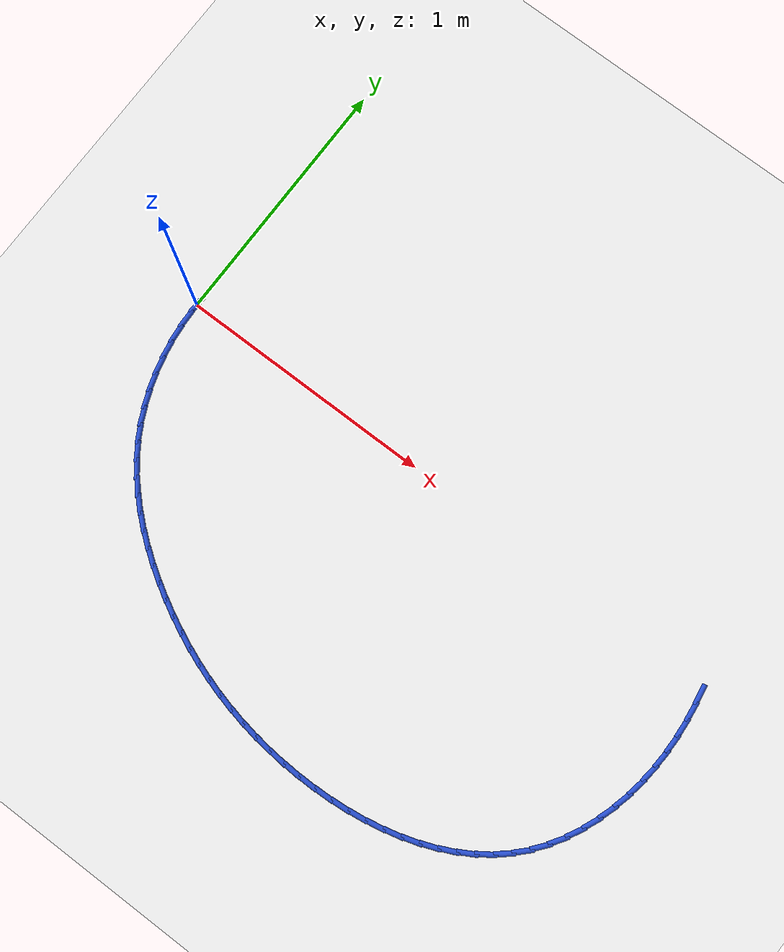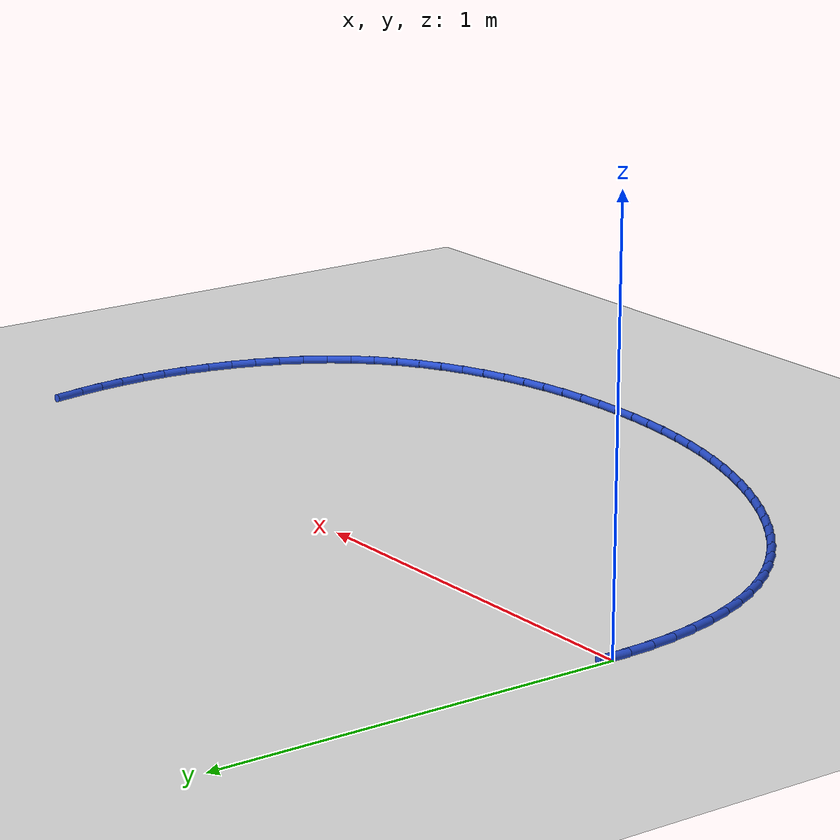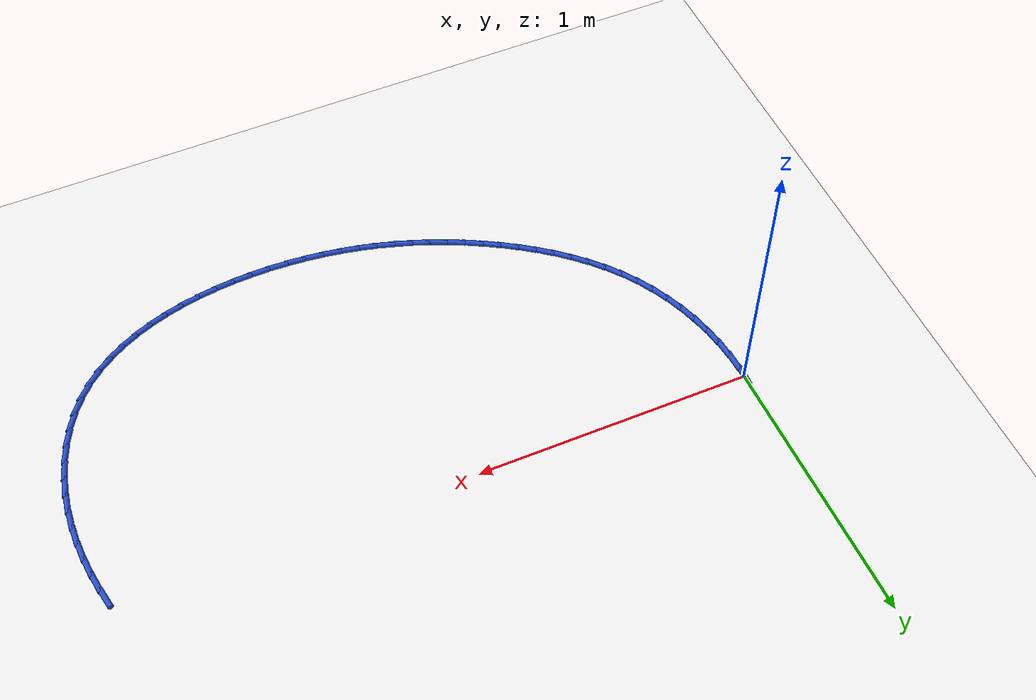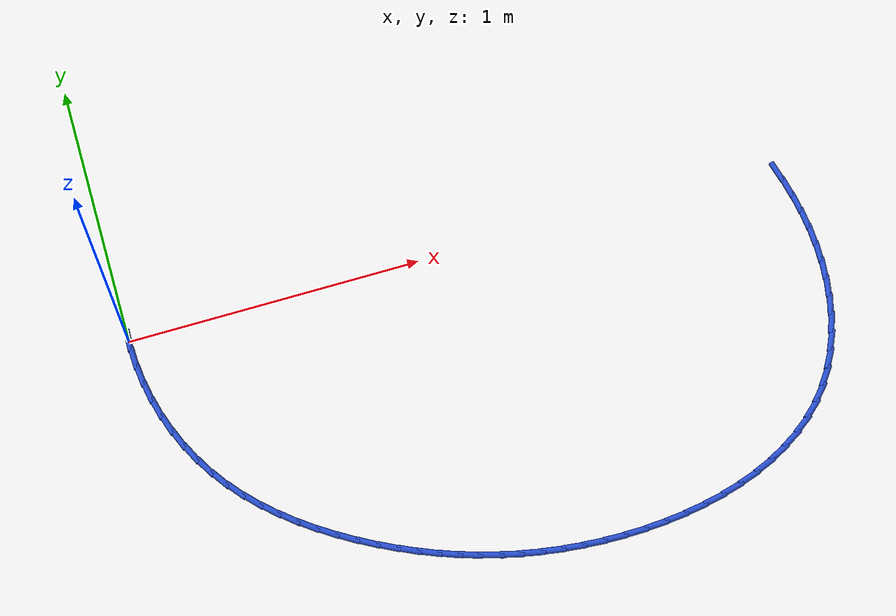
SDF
<sdf version="1.6">
 <world name="default">
  <model name="ground_plane">
   <static>1</static>
   <link name="link">
    <collision name="collision">
     <geometry><plane><normal>0 0 1</normal><size>100 100</size></plane></geometry>
     <surface><friction><ode><mu>100</mu><mu2>50</mu2></ode></friction></surface>
    </collision>
    <visual name="visual">
     <cast_shadows>0</cast_shadows>
     <geometry><plane><normal>0 0 1</normal><size>100 100</size></plane></geometry>
     <material>
      <script><uri>file://media/materials/scripts/gazebo.material</uri><name>Gazebo/WhiteGlow</name></script>
     </material>
    </visual>
   </link>
  </model>
  <model name="line">
   <link name="link_0">
    <pose>4.85722573273506e-17 -4.163336342344337e-17 0.01 0 1.57 1.540018823750158</pose>
    <collision name="collision">
     <geometry><cylinder><radius>0.01</radius><length>0.08</length></cylinder></geometry>
    </collision>
    <visual name="visual">
     <material>
      <script><name>Gazebo/Blue</name><uri>file://media/materials/scripts/gazebo.material</uri></script>
     </material>
     <geometry><cylinder><radius>0.01</radius><length>0.08</length></cylinder></geometry>
    </visual>
   </link>
   <link name="link_55">
    <pose>2.2807574114114697 -0.04441308874393113 0.01 0 1.57 -1.408746461103281</pose>
    <collision name="collision">
     <geometry><cylinder><radius>0.01</radius><length>0.08</length></cylinder></geometry>
    </collision>
    <visual name="visual">
     <material>
      <script><name>Gazebo/Blue</name><uri>file://media/materials/scripts/gazebo.material</uri></script>
     </material>
     <geometry><cylinder><radius>0.01</radius><length>0.08</length></cylinder></geometry>
    </visual>
   </link>
   <link name="link_56">
    <pose>2.2913761379547952 -0.10936601881600619 0.01 0 1.57 -1.4590712561767378</pose>
    <collision name="collision">
     <geometry><cylinder><radius>0.01</radius><length>0.08</length></cylinder></geometry>
    </collision>
    <visual name="visual">
     <material>
      <script><name>Gazebo/Blue</name><uri>file://media/materials/scripts/gazebo.material</uri></script>
     </material>
     <geometry><cylinder><radius>0.01</radius><length>0.08</length></cylinder></geometry>
    </visual>
   </link>
   <link name="link_57">
    <pose>2.29868731068559 -0.1745324742514071 0.01 0 1.57 -1.513032399818721</pose>
    <collision name="collision">
     <geometry><cylinder><radius>0.01</radius><length>0.08</length></cylinder></geometry>
    </collision>
    <visual name="visual">
     <material>
      <script><name>Gazebo/Blue</name><uri>file://media/materials/scripts/gazebo.material</uri></script>
     </material>
     <geometry><cylinder><radius>0.01</radius><length>0.08</length></cylinder></geometry>
    </visual>
   </link>
   <link name="link_58">
    <pose>2.3024623166243057 -0.23981207954438843 0.01 0 1.57 -1.5706397056538313</pose>
    <collision name="collision">
     <geometry><cylinder><radius>0.01</radius><length>0.08</length></cylinder></geometry>
    </collision>
    <visual name="visual">
     <material>
      <script><name>Gazebo/Blue</name><uri>file://media/materials/scripts/gazebo.material</uri></script>
     </material>
     <geometry><cylinder><radius>0.01</radius><length>0.08</length></cylinder></geometry>
    </visual>
   </link>
   <link name="link_59">
    <pose>2.302472542791392 -0.3051044591892079 0.01 0 1.57 1.5097851067988666</pose>
    <collision name="collision">
     <geometry><cylinder><radius>0.01</radius><length>0.08</length></cylinder></geometry>
    </collision>
    <visual name="visual">
     <material>
      <script><name>Gazebo/Blue</name><uri>file://media/materials/scripts/gazebo.material</uri></script>
     </material>
     <geometry><cylinder><radius>0.01</radius><length>0.08</length></cylinder></geometry>
    </visual>
   </link>
   <link name="link_60">
    <pose>2.2984893762072995 -0.3703092376801199 0.01 0 1.57 1.445259182714459</pose>
    <collision name="collision">
     <geometry><cylinder><radius>0.01</radius><length>0.08</length></cylinder></geometry>
    </collision>
    <visual name="visual">
     <material>
      <script><name>Gazebo/Blue</name><uri>file://media/materials/scripts/gazebo.material</uri></script>
     </material>
     <geometry><cylinder><radius>0.01</radius><length>0.08</length></cylinder></geometry>
    </visual>
   </link>
   <link name="link_61">
    <pose>2.2902842038924796 -0.43532603951138255 0.01 0 1.57 1.377776907315647</pose>
    <collision name="collision">
     <geometry><cylinder><radius>0.01</radius><length>0.08</length></cylinder></geometry>
    </collision>
    <visual name="visual">
     <material>
      <script><name>Gazebo/Blue</name><uri>file://media/materials/scripts/gazebo.material</uri></script>
     </material>
     <geometry><cylinder><radius>0.01</radius><length>0.08</length></cylinder></geometry>
    </visual>
   </link>
   <link name="link_62">
    <pose>2.277639471898459 -0.5000206065255947 0.01 0 1.57 1.3079889943962828</pose>
    <collision name="collision">
     <geometry><cylinder><radius>0.01</radius><length>0.08</length></cylinder></geometry>
    </collision>
    <visual name="visual">
     <material>
      <script><name>Gazebo/Blue</name><uri>file://media/materials/scripts/gazebo.material</uri></script>
     </material>
     <geometry><cylinder><radius>0.01</radius><length>0.08</length></cylinder></geometry>
    </visual>
   </link>
   <link name="link_63">
    <pose>2.2604507984794404 -0.5639119436502552 0.01 0 1.57 1.2351311105532303</pose>
    <collision name="collision">
     <geometry><cylinder><radius>0.01</radius><length>0.08</length></cylinder></geometry>
    </collision>
    <visual name="visual">
     <material>
      <script><name>Gazebo/Blue</name><uri>file://media/materials/scripts/gazebo.material</uri></script>
     </material>
     <geometry><cylinder><radius>0.01</radius><length>0.08</length></cylinder></geometry>
    </visual>
   </link>
   <link name="link_64">
    <pose>2.2386801164982812 -0.62631588116141 0.01 0 1.57 1.1578371946355295</pose>
    <collision name="collision">
     <geometry><cylinder><radius>0.01</radius><length>0.08</length></cylinder></geometry>
    </collision>
    <visual name="visual">
     <material>
      <script><name>Gazebo/Blue</name><uri>file://media/materials/scripts/gazebo.material</uri></script>
     </material>
     <geometry><cylinder><radius>0.01</radius><length>0.08</length></cylinder></geometry>
    </visual>
   </link>
   <link name="link_65">
    <pose>2.212290198609874 -0.6865456763808601 0.01 0 1.57 1.0747570063562089</pose>
    <collision name="collision">
     <geometry><cylinder><radius>0.01</radius><length>0.08</length></cylinder></geometry>
    </collision>
    <visual name="visual">
     <material>
      <script><name>Gazebo/Blue</name><uri>file://media/materials/scripts/gazebo.material</uri></script>
     </material>
     <geometry><cylinder><radius>0.01</radius><length>0.08</length></cylinder></geometry>
    </visual>
   </link>
   <link name="link_66">
    <pose>2.181243817469111 -0.7439145866304058 0.01 0 1.57 0.9846068179877406</pose>
    <collision name="collision">
     <geometry><cylinder><radius>0.01</radius><length>0.08</length></cylinder></geometry>
    </collision>
    <visual name="visual">
     <material>
      <script><name>Gazebo/Blue</name><uri>file://media/materials/scripts/gazebo.material</uri></script>
     </material>
     <geometry><cylinder><radius>0.01</radius><length>0.08</length></cylinder></geometry>
    </visual>
   </link>
   <link name="link_67">
    <pose>2.1455037457308848 -0.7977358692318453 0.01 0 1.57 0.8862795984095345</pose>
    <collision name="collision">
     <geometry><cylinder><radius>0.01</radius><length>0.08</length></cylinder></geometry>
    </collision>
    <visual name="visual">
     <material>
      <script><name>Gazebo/Blue</name><uri>file://media/materials/scripts/gazebo.material</uri></script>
     </material>
     <geometry><cylinder><radius>0.01</radius><length>0.08</length></cylinder></geometry>
    </visual>
   </link>
   <link name="link_68">
    <pose>2.1050328269606453 -0.8473229103522499 0.01 0 1.57 0.7822256300309008</pose>
    <collision name="collision">
     <geometry><cylinder><radius>0.01</radius><length>0.08</length></cylinder></geometry>
    </collision>
    <visual name="visual">
     <material>
      <script><name>Gazebo/Blue</name><uri>file://media/materials/scripts/gazebo.material</uri></script>
     </material>
     <geometry><cylinder><radius>0.01</radius><length>0.08</length></cylinder></geometry>
    </visual>
   </link>
   <link name="link_69">
    <pose>2.0598958724508205 -0.8921743726493281 0.01 0 1.57 0.682386545860178</pose>
    <collision name="collision">
     <geometry><cylinder><radius>0.01</radius><length>0.08</length></cylinder></geometry>
    </collision>
    <visual name="visual">
     <material>
      <script><name>Gazebo/Blue</name><uri>file://media/materials/scripts/gazebo.material</uri></script>
     </material>
     <geometry><cylinder><radius>0.01</radius><length>0.08</length></cylinder></geometry>
    </visual>
   </link>
   <link name="link_70">
    <pose>2.010463251615469 -0.9323441212761415 0.01 0 1.57 0.5894495411330677</pose>
    <collision name="collision">
     <geometry><cylinder><radius>0.01</radius><length>0.08</length></cylinder></geometry>
    </collision>
    <visual name="visual">
     <material>
      <script><name>Gazebo/Blue</name><uri>file://media/materials/scripts/gazebo.material</uri></script>
     </material>
     <geometry><cylinder><radius>0.01</radius><length>0.08</length></cylinder></geometry>
    </visual>
   </link>
   <link name="link_71">
    <pose>1.957162327069506 -0.9679895786637005 0.01 0 1.57 0.5037974657079692</pose>
    <collision name="collision">
     <geometry><cylinder><radius>0.01</radius><length>0.08</length></cylinder></geometry>
    </collision>
    <visual name="visual">
     <material>
      <script><name>Gazebo/Blue</name><uri>file://media/materials/scripts/gazebo.material</uri></script>
     </material>
     <geometry><cylinder><radius>0.01</radius><length>0.08</length></cylinder></geometry>
    </visual>
   </link>
   <link name="link_72">
    <pose>1.9004204614278457 -0.9992681672430194 0.01 0 1.57 0.42534489847109624</pose>
    <collision name="collision">
     <geometry><cylinder><radius>0.01</radius><length>0.08</length></cylinder></geometry>
    </collision>
    <visual name="visual">
     <material>
      <script><name>Gazebo/Blue</name><uri>file://media/materials/scripts/gazebo.material</uri></script>
     </material>
     <geometry><cylinder><radius>0.01</radius><length>0.08</length></cylinder></geometry>
    </visual>
   </link>
   <link name="link_73">
    <pose>1.840665017305401 -1.0263373094451083 0.01 0 1.57 0.35368421876210815</pose>
    <collision name="collision">
     <geometry><cylinder><radius>0.01</radius><length>0.08</length></cylinder></geometry>
    </collision>
    <visual name="visual">
     <material>
      <script><name>Gazebo/Blue</name><uri>file://media/materials/scripts/gazebo.material</uri></script>
     </material>
     <geometry><cylinder><radius>0.01</radius><length>0.08</length></cylinder></geometry>
    </visual>
   </link>
   <link name="link_74">
    <pose>1.7783233573170873 -1.0493544277009812 0.01 0 1.57 0.28821583081677526</pose>
    <collision name="collision">
     <geometry><cylinder><radius>0.01</radius><length>0.08</length></cylinder></geometry>
    </collision>
    <visual name="visual">
     <material>
      <script><name>Gazebo/Blue</name><uri>file://media/materials/scripts/gazebo.material</uri></script>
     </material>
     <geometry><cylinder><radius>0.01</radius><length>0.08</length></cylinder></geometry>
    </visual>
   </link>
   <link name="link_75">
    <pose>1.7138228440778196 -1.068476944441649 0.01 0 1.57 0.22824661859675852</pose>
    <collision name="collision">
     <geometry><cylinder><radius>0.01</radius><length>0.08</length></cylinder></geometry>
    </collision>
    <visual name="visual">
     <material>
      <script><name>Gazebo/Blue</name><uri>file://media/materials/scripts/gazebo.material</uri></script>
     </material>
     <geometry><cylinder><radius>0.01</radius><length>0.08</length></cylinder></geometry>
    </visual>
   </link>
   <link name="link_76">
    <pose>1.6475908402025101 -1.0838622820981254 0.01 0 1.57 0.1730554124687907</pose>
    <collision name="collision">
     <geometry><cylinder><radius>0.01</radius><length>0.08</length></cylinder></geometry>
    </collision>
    <visual name="visual">
     <material>
      <script><name>Gazebo/Blue</name><uri>file://media/materials/scripts/gazebo.material</uri></script>
     </material>
     <geometry><cylinder><radius>0.01</radius><length>0.08</length></cylinder></geometry>
    </visual>
   </link>
   <link name="link_77">
    <pose>1.580054708306074 -1.095667863101421 0.01 0 1.57 0.12193110878185506</pose>
    <collision name="collision">
     <geometry><cylinder><radius>0.01</radius><length>0.08</length></cylinder></geometry>
    </collision>
    <visual name="visual">
     <material>
      <script><name>Gazebo/Blue</name><uri>file://media/materials/scripts/gazebo.material</uri></script>
     </material>
     <geometry><cylinder><radius>0.01</radius><length>0.08</length></cylinder></geometry>
    </visual>
   </link>
   <link name="link_78">
    <pose>1.5116418110034253 -1.104051109882549 0.01 0 1.57 0.07419067703078251</pose>
    <collision name="collision">
     <geometry><cylinder><radius>0.01</radius><length>0.08</length></cylinder></geometry>
    </collision>
    <visual name="visual">
     <material>
      <script><name>Gazebo/Blue</name><uri>file://media/materials/scripts/gazebo.material</uri></script>
     </material>
     <geometry><cylinder><radius>0.01</radius><length>0.08</length></cylinder></geometry>
    </visual>
   </link>
   <link name="link_79">
    <pose>1.4427795109094794 -1.1091694448725213 0.01 0 1.57 0.02918333444966029</pose>
    <collision name="collision">
     <geometry><cylinder><radius>0.01</radius><length>0.08</length></cylinder></geometry>
    </collision>
    <visual name="visual">
     <material>
      <script><name>Gazebo/Blue</name><uri>file://media/materials/scripts/gazebo.material</uri></script>
     </material>
     <geometry><cylinder><radius>0.01</radius><length>0.08</length></cylinder></geometry>
    </visual>
   </link>
   <link name="link_80">
    <pose>1.3738951706391487 -1.1111802905023507 0.01 0 1.57 -0.013714601087548949</pose>
    <collision name="collision">
     <geometry><cylinder><radius>0.01</radius><length>0.08</length></cylinder></geometry>
    </collision>
    <visual name="visual">
     <material>
      <script><name>Gazebo/Blue</name><uri>file://media/materials/scripts/gazebo.material</uri></script>
     </material>
     <geometry><cylinder><radius>0.01</radius><length>0.08</length></cylinder></geometry>
    </visual>
   </link>
   <link name="link_81">
    <pose>1.305416152807349 -1.1102410692030487 0.01 0 1.57 -0.05512406982117453</pose>
    <collision name="collision">
     <geometry><cylinder><radius>0.01</radius><length>0.08</length></cylinder></geometry>
    </collision>
    <visual name="visual">
     <material>
      <script><name>Gazebo/Blue</name><uri>file://media/materials/scripts/gazebo.material</uri></script>
     </material>
     <geometry><cylinder><radius>0.01</radius><length>0.08</length></cylinder></geometry>
    </visual>
   </link>
   <link name="link_82">
    <pose>1.2377659228032345 -1.1065081313879415 0.01 0 1.57 -0.09612737045384423</pose>
    <collision name="collision">
     <geometry><cylinder><radius>0.01</radius><length>0.08</length></cylinder></geometry>
    </collision>
    <visual name="visual">
     <material>
      <script><name>Gazebo/Blue</name><uri>file://media/materials/scripts/gazebo.material</uri></script>
     </material>
     <geometry><cylinder><radius>0.01</radius><length>0.08</length></cylinder></geometry>
    </visual>
   </link>
   <link name="link_83">
    <pose>1.171188309875283 -1.1000884145977516 0.01 0 1.57 -0.13755222794818345</pose>
    <collision name="collision">
     <geometry><cylinder><radius>0.01</radius><length>0.08</length></cylinder></geometry>
    </collision>
    <visual name="visual">
     <material>
      <script><name>Gazebo/Blue</name><uri>file://media/materials/scripts/gazebo.material</uri></script>
     </material>
     <geometry><cylinder><radius>0.01</radius><length>0.08</length></cylinder></geometry>
    </visual>
   </link>
   <link name="link_84">
    <pose>1.1056760699412869 -1.091019793129822 0.01 0 1.57 -0.17928989384555716</pose>
    <collision name="collision">
     <geometry><cylinder><radius>0.01</radius><length>0.08</length></cylinder></geometry>
    </collision>
    <visual name="visual">
     <material>
      <script><name>Gazebo/Blue</name><uri>file://media/materials/scripts/gazebo.material</uri></script>
     </material>
     <geometry><cylinder><radius>0.01</radius><length>0.08</length></cylinder></geometry>
    </visual>
   </link>
   <link name="link_85">
    <pose>1.0412032702905039 -1.079335000563057 0.01 0 1.57 -0.22116278965756453</pose>
    <collision name="collision">
     <geometry><cylinder><radius>0.01</radius><length>0.08</length></cylinder></geometry>
    </collision>
    <visual name="visual">
     <material>
      <script><name>Gazebo/Blue</name><uri>file://media/materials/scripts/gazebo.material</uri></script>
     </material>
     <geometry><cylinder><radius>0.01</radius><length>0.08</length></cylinder></geometry>
    </visual>
   </link>
   <link name="link_86">
    <pose>0.9777439782121956 -1.0650667704763612 0.01 0 1.57 -0.26298914281126234</pose>
    <collision name="collision">
     <geometry><cylinder><radius>0.01</radius><length>0.08</length></cylinder></geometry>
    </collision>
    <visual name="visual">
     <material>
      <script><name>Gazebo/Blue</name><uri>file://media/materials/scripts/gazebo.material</uri></script>
     </material>
     <geometry><cylinder><radius>0.01</radius><length>0.08</length></cylinder></geometry>
    </visual>
   </link>
   <link name="link_87">
    <pose>0.9152722609956201 -1.0482478364486376 0.01 0 1.57 -0.304587325157404</pose>
    <collision name="collision">
     <geometry><cylinder><radius>0.01</radius><length>0.08</length></cylinder></geometry>
    </collision>
    <visual name="visual">
     <material>
      <script><name>Gazebo/Blue</name><uri>file://media/materials/scripts/gazebo.material</uri></script>
     </material>
     <geometry><cylinder><radius>0.01</radius><length>0.08</length></cylinder></geometry>
    </visual>
   </link>
   <link name="link_88">
    <pose>0.8537621859300386 -1.0289109320587912 0.01 0 1.57 -0.3457801819571649</pose>
    <collision name="collision">
     <geometry><cylinder><radius>0.01</radius><length>0.08</length></cylinder></geometry>
    </collision>
    <visual name="visual">
     <material>
      <script><name>Gazebo/Blue</name><uri>file://media/materials/scripts/gazebo.material</uri></script>
     </material>
     <geometry><cylinder><radius>0.01</radius><length>0.08</length></cylinder></geometry>
    </visual>
   </link>
   <link name="link_89">
    <pose>0.7931878203047097 -1.0070887908857256 0.01 0 1.57 -0.3863990956414398</pose>
    <collision name="collision">
     <geometry><cylinder><radius>0.01</radius><length>0.08</length></cylinder></geometry>
    </collision>
    <visual name="visual">
     <material>
      <script><name>Gazebo/Blue</name><uri>file://media/materials/scripts/gazebo.material</uri></script>
     </material>
     <geometry><cylinder><radius>0.01</radius><length>0.08</length></cylinder></geometry>
    </visual>
   </link>
   <link name="link_90">
    <pose>0.7335232314088949 -0.9828141465083452 0.01 0 1.57 -0.42628755741082486</pose>
    <collision name="collision">
     <geometry><cylinder><radius>0.01</radius><length>0.08</length></cylinder></geometry>
    </collision>
    <visual name="visual">
     <material>
      <script><name>Gazebo/Blue</name><uri>file://media/materials/scripts/gazebo.material</uri></script>
     </material>
     <geometry><cylinder><radius>0.01</radius><length>0.08</length></cylinder></geometry>
    </visual>
   </link>
   <link name="link_91">
    <pose>0.6747424865318519 -0.9561197325055534 0.01 0 1.57 -0.4653040713294273</pose>
    <collision name="collision">
     <geometry><cylinder><radius>0.01</radius><length>0.08</length></cylinder></geometry>
    </collision>
    <visual name="visual">
     <material>
      <script><name>Gazebo/Blue</name><uri>file://media/materials/scripts/gazebo.material</uri></script>
     </material>
     <geometry><cylinder><radius>0.01</radius><length>0.08</length></cylinder></geometry>
    </visual>
   </link>
   <link name="link_92">
    <pose>0.6168196529628425 -0.9270382824562553 0.01 0 1.57 -0.5033789671715847</pose>
    <collision name="collision">
     <geometry><cylinder><radius>0.01</radius><length>0.08</length></cylinder></geometry>
    </collision>
    <visual name="visual">
     <material>
      <script><name>Gazebo/Blue</name><uri>file://media/materials/scripts/gazebo.material</uri></script>
     </material>
     <geometry><cylinder><radius>0.01</radius><length>0.08</length></cylinder></geometry>
    </visual>
   </link>
   <link name="link_93">
    <pose>0.5597342499028881 -0.8956014635487461 0.01 0 1.57 -0.54220315272803</pose>
    <collision name="collision">
     <geometry><cylinder><radius>0.01</radius><length>0.08</length></cylinder></geometry>
    </collision>
    <visual name="visual">
     <material>
      <script><name>Gazebo/Blue</name><uri>file://media/materials/scripts/gazebo.material</uri></script>
     </material>
     <geometry><cylinder><radius>0.01</radius><length>0.08</length></cylinder></geometry>
    </visual>
   </link>
   <link name="link_94">
    <pose>0.5036377103545291 -0.8618073167368453 0.01 0 1.57 -0.5840805769103816</pose>
    <collision name="collision">
     <geometry><cylinder><radius>0.01</radius><length>0.08</length></cylinder></geometry>
    </collision>
    <visual name="visual">
     <material>
      <script><name>Gazebo/Blue</name><uri>file://media/materials/scripts/gazebo.material</uri></script>
     </material>
     <geometry><cylinder><radius>0.01</radius><length>0.08</length></cylinder></geometry>
    </visual>
   </link>
   <link name="link_95">
    <pose>0.44888405127809244 -0.825614257676075 0.01 0 1.57 -0.6295056447917265</pose>
    <collision name="collision">
     <geometry><cylinder><radius>0.01</radius><length>0.08</length></cylinder></geometry>
    </collision>
    <visual name="visual">
     <material>
      <script><name>Gazebo/Blue</name><uri>file://media/materials/scripts/gazebo.material</uri></script>
     </material>
     <geometry><cylinder><radius>0.01</radius><length>0.08</length></cylinder></geometry>
    </visual>
   </link>
   <link name="link_96">
    <pose>0.3958389274430401 -0.7869784256736095 0.01 0 1.57 -0.678863049385904</pose>
    <collision name="collision">
     <geometry><cylinder><radius>0.01</radius><length>0.08</length></cylinder></geometry>
    </collision>
    <visual name="visual">
     <material>
      <script><name>Gazebo/Blue</name><uri>file://media/materials/scripts/gazebo.material</uri></script>
     </material>
     <geometry><cylinder><radius>0.01</radius><length>0.08</length></cylinder></geometry>
    </visual>
   </link>
   <link name="link_97">
    <pose>0.344867993618831 -0.7458559600366197 0.01 0 1.57 -0.7325301948202977</pose>
    <collision name="collision">
     <geometry><cylinder><radius>0.01</radius><length>0.08</length></cylinder></geometry>
    </collision>
    <visual name="visual">
     <material>
      <script><name>Gazebo/Blue</name><uri>file://media/materials/scripts/gazebo.material</uri></script>
     </material>
     <geometry><cylinder><radius>0.01</radius><length>0.08</length></cylinder></geometry>
    </visual>
   </link>
   <link name="link_98">
    <pose>0.2963369045749245 -0.7022030000722776 0.01 0 1.57 -0.7908544403281612</pose>
    <collision name="collision">
     <geometry><cylinder><radius>0.01</radius><length>0.08</length></cylinder></geometry>
    </collision>
    <visual name="visual">
     <material>
      <script><name>Gazebo/Blue</name><uri>file://media/materials/scripts/gazebo.material</uri></script>
     </material>
     <geometry><cylinder><radius>0.01</radius><length>0.08</length></cylinder></geometry>
    </visual>
   </link>
   <link name="link_99">
    <pose>0.2506113150807817 -0.6559756850877565 0.01 0 1.57 -0.8541201663229863</pose>
    <collision name="collision">
     <geometry><cylinder><radius>0.01</radius><length>0.08</length></cylinder></geometry>
    </collision>
    <visual name="visual">
     <material>
      <script><name>Gazebo/Blue</name><uri>file://media/materials/scripts/gazebo.material</uri></script>
     </material>
     <geometry><cylinder><radius>0.01</radius><length>0.08</length></cylinder></geometry>
    </visual>
   </link>
   <link name="link_100">
    <pose>0.20805687990586166 -0.6071301543902278 0.01 0 1.57 -0.9225049018058135</pose>
    <collision name="collision">
     <geometry><cylinder><radius>0.01</radius><length>0.08</length></cylinder></geometry>
    </collision>
    <visual name="visual">
     <material>
      <script><name>Gazebo/Blue</name><uri>file://media/materials/scripts/gazebo.material</uri></script>
     </material>
     <geometry><cylinder><radius>0.01</radius><length>0.08</length></cylinder></geometry>
    </visual>
   </link>
   <link name="link_101">
    <pose>0.1690392538196252 -0.5556225472868646 0.01 0 1.57 -0.9955893371240839</pose>
    <collision name="collision">
     <geometry><cylinder><radius>0.01</radius><length>0.08</length></cylinder></geometry>
    </collision>
    <visual name="visual">
     <material>
      <script><name>Gazebo/Blue</name><uri>file://media/materials/scripts/gazebo.material</uri></script>
     </material>
     <geometry><cylinder><radius>0.01</radius><length>0.08</length></cylinder></geometry>
    </visual>
   </link>
   <link name="link_102">
    <pose>0.13390316984151465 -0.5014285847166458 0.01 0 1.57 -1.0690494348406825</pose>
    <collision name="collision">
     <geometry><cylinder><radius>0.01</radius><length>0.08</length></cylinder></geometry>
    </collision>
    <visual name="visual">
     <material>
      <script><name>Gazebo/Blue</name><uri>file://media/materials/scripts/gazebo.material</uri></script>
     </material>
     <geometry><cylinder><radius>0.01</radius><length>0.08</length></cylinder></geometry>
    </visual>
   </link>
   <link name="link_103">
    <pose>0.10279083407962375 -0.44471354190564905 0.01 0 1.57 -1.1405491202194586</pose>
    <collision name="collision">
     <geometry><cylinder><radius>0.01</radius><length>0.08</length></cylinder></geometry>
    </collision>
    <visual name="visual">
     <material>
      <script><name>Gazebo/Blue</name><uri>file://media/materials/scripts/gazebo.material</uri></script>
     </material>
     <geometry><cylinder><radius>0.01</radius><length>0.08</length></cylinder></geometry>
    </visual>
   </link>
   <link name="link_104">
    <pose>0.07573082928525171 -0.38574903942561595 0.01 0 1.57 -1.2101939564370823</pose>
    <collision name="collision">
     <geometry><cylinder><radius>0.01</radius><length>0.08</length></cylinder></geometry>
    </collision>
    <visual name="visual">
     <material>
      <script><name>Gazebo/Blue</name><uri>file://media/materials/scripts/gazebo.material</uri></script>
     </material>
     <geometry><cylinder><radius>0.01</radius><length>0.08</length></cylinder></geometry>
    </visual>
   </link>
   <link name="link_105">
    <pose>0.052750481336311286 -0.3248078742141253 0.01 0 1.57 -1.278170459745078</pose>
    <collision name="collision">
     <geometry><cylinder><radius>0.01</radius><length>0.08</length></cylinder></geometry>
    </collision>
    <visual name="visual">
     <material>
      <script><name>Gazebo/Blue</name><uri>file://media/materials/scripts/gazebo.material</uri></script>
     </material>
     <geometry><cylinder><radius>0.01</radius><length>0.08</length></cylinder></geometry>
    </visual>
   </link>
   <link name="link_106">
    <pose>0.03387711611071397 -0.2621628432087531 0.01 0 1.57 -1.344704910101411</pose>
    <collision name="collision">
     <geometry><cylinder><radius>0.01</radius><length>0.08</length></cylinder></geometry>
    </collision>
    <visual name="visual">
     <material>
      <script><name>Gazebo/Blue</name><uri>file://media/materials/scripts/gazebo.material</uri></script>
     </material>
     <geometry><cylinder><radius>0.01</radius><length>0.08</length></cylinder></geometry>
    </visual>
   </link>
   <link name="link_107">
    <pose>0.019138059486372296 -0.1980867433470777 0.01 0 1.57 -1.4100503843206813</pose>
    <collision name="collision">
     <geometry><cylinder><radius>0.01</radius><length>0.08</length></cylinder></geometry>
    </collision>
    <visual name="visual">
     <material>
      <script><name>Gazebo/Blue</name><uri>file://media/materials/scripts/gazebo.material</uri></script>
     </material>
     <geometry><cylinder><radius>0.01</radius><length>0.08</length></cylinder></geometry>
    </visual>
   </link>
   <link name="link_108">
    <pose>0.008560637341197925 -0.13285237156667506 0.01 0 1.57 -1.4744758832477212</pose>
    <collision name="collision">
     <geometry><cylinder><radius>0.01</radius><length>0.08</length></cylinder></geometry>
    </collision>
    <visual name="visual">
     <material>
      <script><name>Gazebo/Blue</name><uri>file://media/materials/scripts/gazebo.material</uri></script>
     </material>
     <geometry><cylinder><radius>0.01</radius><length>0.08</length></cylinder></geometry>
    </visual>
   </link>
   <link name="link_109">
    <pose>0.002172175553103204 -0.06673252480512383 0.01 0 1.57 -1.538257338011605</pose>
    <collision name="collision">
     <geometry><cylinder><radius>0.01</radius><length>0.08</length></cylinder></geometry>
    </collision>
    <visual name="visual">
     <material>
      <script><name>Gazebo/Blue</name><uri>file://media/materials/scripts/gazebo.material</uri></script>
     </material>
     <geometry><cylinder><radius>0.01</radius><length>0.08</length></cylinder></geometry>
    </visual>
   </link>
  </model>
 </world>
</sdf>
